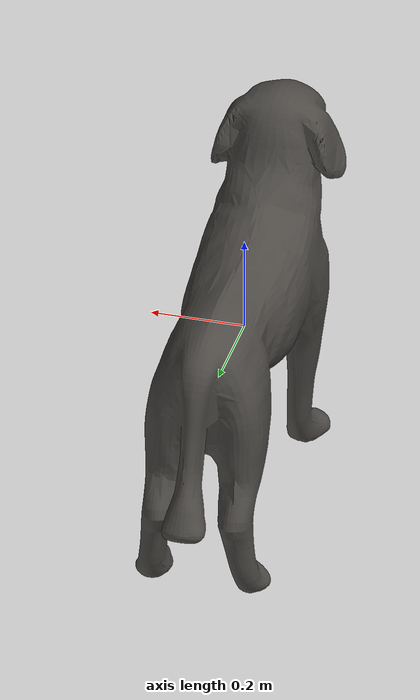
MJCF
<mujoco model="ImageToStl.com_uploads_files_5014764_Dog">
  <asset>
  <texture file="visual/ceramic.png" name="tex-ImageToStl.com_uploads_files_5014764_Dog" type="2d" />
  <material name="ImageToStl.com_uploads_files_5014764_Dog" reflectance="0.5" texrepeat="1 1" texture="tex-ImageToStl.com_uploads_files_5014764_Dog" texuniform="false" />
  <mesh file="visual/model_normalized_0.obj" name="model_normalized_0_vis" scale="1.0 1.0 1.0" /><texture type="2d" name="material_0" file="visual/Dog_Quad_Diffuse.png" /><material name="material_0" texture="material_0" specular="0.4" shininess="0.001" rgba="0.40000000 0.40000000 0.40000000 1.0" /><mesh file="collision/collision_piece_0.obj" name="collision_piece_0._coll" scale="1.0 1.0 1.0" /><mesh file="collision/collision_piece_1.obj" name="collision_piece_1._coll" scale="1.0 1.0 1.0" /><mesh file="collision/collision_piece_2.obj" name="collision_piece_2._coll" scale="1.0 1.0 1.0" /><mesh file="collision/collision_piece_3.obj" name="collision_piece_3._coll" scale="1.0 1.0 1.0" /><mesh file="collision/collision_piece_4.obj" name="collision_piece_4._coll" scale="1.0 1.0 1.0" /><mesh file="collision/collision_piece_5.obj" name="collision_piece_5._coll" scale="1.0 1.0 1.0" /><mesh file="collision/collision_piece_6.obj" name="collision_piece_6._coll" scale="1.0 1.0 1.0" /><mesh file="collision/collision_piece_7.obj" name="collision_piece_7._coll" scale="1.0 1.0 1.0" /><mesh file="collision/collision_piece_8.obj" name="collision_piece_8._coll" scale="1.0 1.0 1.0" /><mesh file="collision/collision_piece_9.obj" name="collision_piece_9._coll" scale="1.0 1.0 1.0" /><mesh file="collision/collision_piece_10.obj" name="collision_piece_10._coll" scale="1.0 1.0 1.0" /><mesh file="collision/collision_piece_11.obj" name="collision_piece_11._coll" scale="1.0 1.0 1.0" /><mesh file="collision/collision_piece_12.obj" name="collision_piece_12._coll" scale="1.0 1.0 1.0" /><mesh file="collision/collision_piece_13.obj" name="collision_piece_13._coll" scale="1.0 1.0 1.0" /><mesh file="collision/collision_piece_14.obj" name="collision_piece_14._coll" scale="1.0 1.0 1.0" /><mesh file="collision/collision_piece_15.obj" name="collision_piece_15._coll" scale="1.0 1.0 1.0" /><mesh file="collision/collision_piece_16.obj" name="collision_piece_16._coll" scale="1.0 1.0 1.0" /><mesh file="collision/collision_piece_17.obj" name="collision_piece_17._coll" scale="1.0 1.0 1.0" /><mesh file="collision/collision_piece_18.obj" name="collision_piece_18._coll" scale="1.0 1.0 1.0" /><mesh file="collision/collision_piece_19.obj" name="collision_piece_19._coll" scale="1.0 1.0 1.0" /><mesh file="collision/collision_piece_20.obj" name="collision_piece_20._coll" scale="1.0 1.0 1.0" /><mesh file="collision/collision_piece_21.obj" name="collision_piece_21._coll" scale="1.0 1.0 1.0" /><mesh file="collision/collision_piece_22.obj" name="collision_piece_22._coll" scale="1.0 1.0 1.0" /><mesh file="collision/collision_piece_23.obj" name="collision_piece_23._coll" scale="1.0 1.0 1.0" /><mesh file="collision/collision_piece_24.obj" name="collision_piece_24._coll" scale="1.0 1.0 1.0" /><mesh file="collision/collision_piece_25.obj" name="collision_piece_25._coll" scale="1.0 1.0 1.0" /><mesh file="collision/collision_piece_26.obj" name="collision_piece_26._coll" scale="1.0 1.0 1.0" /><mesh file="collision/collision_piece_27.obj" name="collision_piece_27._coll" scale="1.0 1.0 1.0" /><mesh file="collision/collision_piece_28.obj" name="collision_piece_28._coll" scale="1.0 1.0 1.0" /><mesh file="collision/collision_piece_29.obj" name="collision_piece_29._coll" scale="1.0 1.0 1.0" /><mesh file="collision/collision_piece_30.obj" name="collision_piece_30._coll" scale="1.0 1.0 1.0" /><mesh file="collision/collision_piece_31.obj" name="collision_piece_31._coll" scale="1.0 1.0 1.0" /><mesh file="collision/collision_piece_32.obj" name="collision_piece_32._coll" scale="1.0 1.0 1.0" /><mesh file="collision/collision_piece_33.obj" name="collision_piece_33._coll" scale="1.0 1.0 1.0" /><mesh file="collision/collision_piece_34.obj" name="collision_piece_34._coll" scale="1.0 1.0 1.0" /><mesh file="collision/collision_piece_35.obj" name="collision_piece_35._coll" scale="1.0 1.0 1.0" /><mesh file="collision/collision_piece_36.obj" name="collision_piece_36._coll" scale="1.0 1.0 1.0" /><mesh file="collision/collision_piece_37.obj" name="collision_piece_37._coll" scale="1.0 1.0 1.0" /><mesh file="collision/collision_piece_38.obj" name="collision_piece_38._coll" scale="1.0 1.0 1.0" /><mesh file="collision/collision_piece_39.obj" name="collision_piece_39._coll" scale="1.0 1.0 1.0" /><mesh file="collision/collision_piece_40.obj" name="collision_piece_40._coll" scale="1.0 1.0 1.0" /><mesh file="collision/collision_piece_41.obj" name="collision_piece_41._coll" scale="1.0 1.0 1.0" /><mesh file="collision/collision_piece_42.obj" name="collision_piece_42._coll" scale="1.0 1.0 1.0" /><mesh file="collision/collision_piece_43.obj" name="collision_piece_43._coll" scale="1.0 1.0 1.0" /><mesh file="collision/collision_piece_44.obj" name="collision_piece_44._coll" scale="1.0 1.0 1.0" /><mesh file="collision/collision_piece_45.obj" name="collision_piece_45._coll" scale="1.0 1.0 1.0" /><mesh file="collision/collision_piece_46.obj" name="collision_piece_46._coll" scale="1.0 1.0 1.0" /><mesh file="collision/collision_piece_47.obj" name="collision_piece_47._coll" scale="1.0 1.0 1.0" /><mesh file="collision/collision_piece_48.obj" name="collision_piece_48._coll" scale="1.0 1.0 1.0" /><mesh file="collision/collision_piece_49.obj" name="collision_piece_49._coll" scale="1.0 1.0 1.0" /><mesh file="collision/collision_piece_50.obj" name="collision_piece_50._coll" scale="1.0 1.0 1.0" /><mesh file="collision/collision_piece_51.obj" name="collision_piece_51._coll" scale="1.0 1.0 1.0" /><mesh file="collision/collision_piece_52.obj" name="collision_piece_52._coll" scale="1.0 1.0 1.0" /><mesh file="collision/collision_piece_53.obj" name="collision_piece_53._coll" scale="1.0 1.0 1.0" /><mesh file="collision/collision_piece_54.obj" name="collision_piece_54._coll" scale="1.0 1.0 1.0" /><mesh file="collision/collision_piece_55.obj" name="collision_piece_55._coll" scale="1.0 1.0 1.0" /><mesh file="collision/collision_piece_56.obj" name="collision_piece_56._coll" scale="1.0 1.0 1.0" /><mesh file="collision/collision_piece_57.obj" name="collision_piece_57._coll" scale="1.0 1.0 1.0" /><mesh file="collision/collision_piece_58.obj" name="collision_piece_58._coll" scale="1.0 1.0 1.0" /><mesh file="collision/collision_piece_59.obj" name="collision_piece_59._coll" scale="1.0 1.0 1.0" /><mesh file="collision/collision_piece_60.obj" name="collision_piece_60._coll" scale="1.0 1.0 1.0" /><mesh file="collision/collision_piece_61.obj" name="collision_piece_61._coll" scale="1.0 1.0 1.0" /><mesh file="collision/collision_piece_62.obj" name="collision_piece_62._coll" scale="1.0 1.0 1.0" /><mesh file="collision/collision_piece_63.obj" name="collision_piece_63._coll" scale="1.0 1.0 1.0" /><mesh file="collision/collision_piece_64.obj" name="collision_piece_64._coll" scale="1.0 1.0 1.0" /><mesh file="collision/collision_piece_65.obj" name="collision_piece_65._coll" scale="1.0 1.0 1.0" /><mesh file="collision/collision_piece_66.obj" name="collision_piece_66._coll" scale="1.0 1.0 1.0" /><mesh file="collision/collision_piece_67.obj" name="collision_piece_67._coll" scale="1.0 1.0 1.0" /><mesh file="collision/collision_piece_68.obj" name="collision_piece_68._coll" scale="1.0 1.0 1.0" /><mesh file="collision/collision_piece_69.obj" name="collision_piece_69._coll" scale="1.0 1.0 1.0" /><mesh file="collision/collision_piece_70.obj" name="collision_piece_70._coll" scale="1.0 1.0 1.0" /><mesh file="collision/collision_piece_71.obj" name="collision_piece_71._coll" scale="1.0 1.0 1.0" /><mesh file="collision/collision_piece_72.obj" name="collision_piece_72._coll" scale="1.0 1.0 1.0" /><mesh file="collision/collision_piece_73.obj" name="collision_piece_73._coll" scale="1.0 1.0 1.0" /><mesh file="collision/collision_piece_74.obj" name="collision_piece_74._coll" scale="1.0 1.0 1.0" /><mesh file="collision/collision_piece_75.obj" name="collision_piece_75._coll" scale="1.0 1.0 1.0" /><mesh file="collision/collision_piece_76.obj" name="collision_piece_76._coll" scale="1.0 1.0 1.0" /><mesh file="collision/collision_piece_77.obj" name="collision_piece_77._coll" scale="1.0 1.0 1.0" /><mesh file="collision/collision_piece_78.obj" name="collision_piece_78._coll" scale="1.0 1.0 1.0" /><mesh file="collision/collision_piece_79.obj" name="collision_piece_79._coll" scale="1.0 1.0 1.0" /><mesh file="collision/collision_piece_80.obj" name="collision_piece_80._coll" scale="1.0 1.0 1.0" /><mesh file="collision/collision_piece_81.obj" name="collision_piece_81._coll" scale="1.0 1.0 1.0" /><mesh file="collision/collision_piece_82.obj" name="collision_piece_82._coll" scale="1.0 1.0 1.0" /><mesh file="collision/collision_piece_83.obj" name="collision_piece_83._coll" scale="1.0 1.0 1.0" /><mesh file="collision/collision_piece_84.obj" name="collision_piece_84._coll" scale="1.0 1.0 1.0" /><mesh file="collision/collision_piece_85.obj" name="collision_piece_85._coll" scale="1.0 1.0 1.0" /><mesh file="collision/collision_piece_86.obj" name="collision_piece_86._coll" scale="1.0 1.0 1.0" /><mesh file="collision/collision_piece_87.obj" name="collision_piece_87._coll" scale="1.0 1.0 1.0" /><mesh file="collision/collision_piece_88.obj" name="collision_piece_88._coll" scale="1.0 1.0 1.0" /><mesh file="collision/collision_piece_89.obj" name="collision_piece_89._coll" scale="1.0 1.0 1.0" /><mesh file="collision/collision_piece_90.obj" name="collision_piece_90._coll" scale="1.0 1.0 1.0" /><mesh file="collision/collision_piece_91.obj" name="collision_piece_91._coll" scale="1.0 1.0 1.0" /><mesh file="collision/collision_piece_92.obj" name="collision_piece_92._coll" scale="1.0 1.0 1.0" /><mesh file="collision/collision_piece_93.obj" name="collision_piece_93._coll" scale="1.0 1.0 1.0" /><mesh file="collision/collision_piece_94.obj" name="collision_piece_94._coll" scale="1.0 1.0 1.0" /><mesh file="collision/collision_piece_95.obj" name="collision_piece_95._coll" scale="1.0 1.0 1.0" /><mesh file="collision/collision_piece_96.obj" name="collision_piece_96._coll" scale="1.0 1.0 1.0" /><mesh file="collision/collision_piece_97.obj" name="collision_piece_97._coll" scale="1.0 1.0 1.0" /><mesh file="collision/collision_piece_98.obj" name="collision_piece_98._coll" scale="1.0 1.0 1.0" /><mesh file="collision/collision_piece_99.obj" name="collision_piece_99._coll" scale="1.0 1.0 1.0" /><mesh file="collision/collision_piece_100.obj" name="collision_piece_100._coll" scale="1.0 1.0 1.0" /><mesh file="collision/collision_piece_101.obj" name="collision_piece_101._coll" scale="1.0 1.0 1.0" /><mesh file="collision/collision_piece_102.obj" name="collision_piece_102._coll" scale="1.0 1.0 1.0" /><mesh file="collision/collision_piece_103.obj" name="collision_piece_103._coll" scale="1.0 1.0 1.0" /><mesh file="collision/collision_piece_104.obj" name="collision_piece_104._coll" scale="1.0 1.0 1.0" /><mesh file="collision/collision_piece_105.obj" name="collision_piece_105._coll" scale="1.0 1.0 1.0" /><mesh file="collision/collision_piece_106.obj" name="collision_piece_106._coll" scale="1.0 1.0 1.0" /><mesh file="collision/collision_piece_107.obj" name="collision_piece_107._coll" scale="1.0 1.0 1.0" /><mesh file="collision/collision_piece_108.obj" name="collision_piece_108._coll" scale="1.0 1.0 1.0" /><mesh file="collision/collision_piece_109.obj" name="collision_piece_109._coll" scale="1.0 1.0 1.0" /><mesh file="collision/collision_piece_110.obj" name="collision_piece_110._coll" scale="1.0 1.0 1.0" /><mesh file="collision/collision_piece_111.obj" name="collision_piece_111._coll" scale="1.0 1.0 1.0" /><mesh file="collision/collision_piece_112.obj" name="collision_piece_112._coll" scale="1.0 1.0 1.0" /><mesh file="collision/collision_piece_113.obj" name="collision_piece_113._coll" scale="1.0 1.0 1.0" /><mesh file="collision/collision_piece_114.obj" name="collision_piece_114._coll" scale="1.0 1.0 1.0" /><mesh file="collision/collision_piece_115.obj" name="collision_piece_115._coll" scale="1.0 1.0 1.0" /><mesh file="collision/collision_piece_116.obj" name="collision_piece_116._coll" scale="1.0 1.0 1.0" /><mesh file="collision/collision_piece_117.obj" name="collision_piece_117._coll" scale="1.0 1.0 1.0" /><mesh file="collision/collision_piece_118.obj" name="collision_piece_118._coll" scale="1.0 1.0 1.0" /><mesh file="collision/collision_piece_119.obj" name="collision_piece_119._coll" scale="1.0 1.0 1.0" /><mesh file="collision/collision_piece_120.obj" name="collision_piece_120._coll" scale="1.0 1.0 1.0" /><mesh file="collision/collision_piece_121.obj" name="collision_piece_121._coll" scale="1.0 1.0 1.0" /><mesh file="collision/collision_piece_122.obj" name="collision_piece_122._coll" scale="1.0 1.0 1.0" /><mesh file="collision/collision_piece_123.obj" name="collision_piece_123._coll" scale="1.0 1.0 1.0" /><mesh file="collision/collision_piece_124.obj" name="collision_piece_124._coll" scale="1.0 1.0 1.0" /><mesh file="collision/collision_piece_125.obj" name="collision_piece_125._coll" scale="1.0 1.0 1.0" /><mesh file="collision/collision_piece_126.obj" name="collision_piece_126._coll" scale="1.0 1.0 1.0" /><mesh file="collision/collision_piece_127.obj" name="collision_piece_127._coll" scale="1.0 1.0 1.0" /></asset>
  <worldbody>
    <body>
      <body name="object">
      <geom solimp="0.998 0.998 0.001" solref="0.001 1" density="100" friction="0.95 0.3 0.1" type="mesh" mesh="model_normalized_0_vis" conaffinity="0" contype="0" group="1" material="material_0" /><geom solimp="0.998 0.998 0.001" solref="0.001 1" density="100" friction="0.95 0.3 0.1" type="mesh" mesh="collision_piece_0._coll" group="0" rgba="0.8 0.8 0.8 0.0" /><geom solimp="0.998 0.998 0.001" solref="0.001 1" density="100" friction="0.95 0.3 0.1" type="mesh" mesh="collision_piece_1._coll" group="0" rgba="0.8 0.8 0.8 0.0" /><geom solimp="0.998 0.998 0.001" solref="0.001 1" density="100" friction="0.95 0.3 0.1" type="mesh" mesh="collision_piece_2._coll" group="0" rgba="0.8 0.8 0.8 0.0" /><geom solimp="0.998 0.998 0.001" solref="0.001 1" density="100" friction="0.95 0.3 0.1" type="mesh" mesh="collision_piece_3._coll" group="0" rgba="0.8 0.8 0.8 0.0" /><geom solimp="0.998 0.998 0.001" solref="0.001 1" density="100" friction="0.95 0.3 0.1" type="mesh" mesh="collision_piece_4._coll" group="0" rgba="0.8 0.8 0.8 0.0" /><geom solimp="0.998 0.998 0.001" solref="0.001 1" density="100" friction="0.95 0.3 0.1" type="mesh" mesh="collision_piece_5._coll" group="0" rgba="0.8 0.8 0.8 0.0" /><geom solimp="0.998 0.998 0.001" solref="0.001 1" density="100" friction="0.95 0.3 0.1" type="mesh" mesh="collision_piece_6._coll" group="0" rgba="0.8 0.8 0.8 0.0" /><geom solimp="0.998 0.998 0.001" solref="0.001 1" density="100" friction="0.95 0.3 0.1" type="mesh" mesh="collision_piece_7._coll" group="0" rgba="0.8 0.8 0.8 0.0" /><geom solimp="0.998 0.998 0.001" solref="0.001 1" density="100" friction="0.95 0.3 0.1" type="mesh" mesh="collision_piece_8._coll" group="0" rgba="0.8 0.8 0.8 0.0" /><geom solimp="0.998 0.998 0.001" solref="0.001 1" density="100" friction="0.95 0.3 0.1" type="mesh" mesh="collision_piece_9._coll" group="0" rgba="0.8 0.8 0.8 0.0" /><geom solimp="0.998 0.998 0.001" solref="0.001 1" density="100" friction="0.95 0.3 0.1" type="mesh" mesh="collision_piece_10._coll" group="0" rgba="0.8 0.8 0.8 0.0" /><geom solimp="0.998 0.998 0.001" solref="0.001 1" density="100" friction="0.95 0.3 0.1" type="mesh" mesh="collision_piece_11._coll" group="0" rgba="0.8 0.8 0.8 0.0" /><geom solimp="0.998 0.998 0.001" solref="0.001 1" density="100" friction="0.95 0.3 0.1" type="mesh" mesh="collision_piece_12._coll" group="0" rgba="0.8 0.8 0.8 0.0" /><geom solimp="0.998 0.998 0.001" solref="0.001 1" density="100" friction="0.95 0.3 0.1" type="mesh" mesh="collision_piece_13._coll" group="0" rgba="0.8 0.8 0.8 0.0" /><geom solimp="0.998 0.998 0.001" solref="0.001 1" density="100" friction="0.95 0.3 0.1" type="mesh" mesh="collision_piece_14._coll" group="0" rgba="0.8 0.8 0.8 0.0" /><geom solimp="0.998 0.998 0.001" solref="0.001 1" density="100" friction="0.95 0.3 0.1" type="mesh" mesh="collision_piece_15._coll" group="0" rgba="0.8 0.8 0.8 0.0" /><geom solimp="0.998 0.998 0.001" solref="0.001 1" density="100" friction="0.95 0.3 0.1" type="mesh" mesh="collision_piece_16._coll" group="0" rgba="0.8 0.8 0.8 0.0" /><geom solimp="0.998 0.998 0.001" solref="0.001 1" density="100" friction="0.95 0.3 0.1" type="mesh" mesh="collision_piece_17._coll" group="0" rgba="0.8 0.8 0.8 0.0" /><geom solimp="0.998 0.998 0.001" solref="0.001 1" density="100" friction="0.95 0.3 0.1" type="mesh" mesh="collision_piece_18._coll" group="0" rgba="0.8 0.8 0.8 0.0" /><geom solimp="0.998 0.998 0.001" solref="0.001 1" density="100" friction="0.95 0.3 0.1" type="mesh" mesh="collision_piece_19._coll" group="0" rgba="0.8 0.8 0.8 0.0" /><geom solimp="0.998 0.998 0.001" solref="0.001 1" density="100" friction="0.95 0.3 0.1" type="mesh" mesh="collision_piece_20._coll" group="0" rgba="0.8 0.8 0.8 0.0" /><geom solimp="0.998 0.998 0.001" solref="0.001 1" density="100" friction="0.95 0.3 0.1" type="mesh" mesh="collision_piece_21._coll" group="0" rgba="0.8 0.8 0.8 0.0" /><geom solimp="0.998 0.998 0.001" solref="0.001 1" density="100" friction="0.95 0.3 0.1" type="mesh" mesh="collision_piece_22._coll" group="0" rgba="0.8 0.8 0.8 0.0" /><geom solimp="0.998 0.998 0.001" solref="0.001 1" density="100" friction="0.95 0.3 0.1" type="mesh" mesh="collision_piece_23._coll" group="0" rgba="0.8 0.8 0.8 0.0" /><geom solimp="0.998 0.998 0.001" solref="0.001 1" density="100" friction="0.95 0.3 0.1" type="mesh" mesh="collision_piece_24._coll" group="0" rgba="0.8 0.8 0.8 0.0" /><geom solimp="0.998 0.998 0.001" solref="0.001 1" density="100" friction="0.95 0.3 0.1" type="mesh" mesh="collision_piece_25._coll" group="0" rgba="0.8 0.8 0.8 0.0" /><geom solimp="0.998 0.998 0.001" solref="0.001 1" density="100" friction="0.95 0.3 0.1" type="mesh" mesh="collision_piece_26._coll" group="0" rgba="0.8 0.8 0.8 0.0" /><geom solimp="0.998 0.998 0.001" solref="0.001 1" density="100" friction="0.95 0.3 0.1" type="mesh" mesh="collision_piece_27._coll" group="0" rgba="0.8 0.8 0.8 0.0" /><geom solimp="0.998 0.998 0.001" solref="0.001 1" density="100" friction="0.95 0.3 0.1" type="mesh" mesh="collision_piece_28._coll" group="0" rgba="0.8 0.8 0.8 0.0" /><geom solimp="0.998 0.998 0.001" solref="0.001 1" density="100" friction="0.95 0.3 0.1" type="mesh" mesh="collision_piece_29._coll" group="0" rgba="0.8 0.8 0.8 0.0" /><geom solimp="0.998 0.998 0.001" solref="0.001 1" density="100" friction="0.95 0.3 0.1" type="mesh" mesh="collision_piece_30._coll" group="0" rgba="0.8 0.8 0.8 0.0" /><geom solimp="0.998 0.998 0.001" solref="0.001 1" density="100" friction="0.95 0.3 0.1" type="mesh" mesh="collision_piece_31._coll" group="0" rgba="0.8 0.8 0.8 0.0" /><geom solimp="0.998 0.998 0.001" solref="0.001 1" density="100" friction="0.95 0.3 0.1" type="mesh" mesh="collision_piece_32._coll" group="0" rgba="0.8 0.8 0.8 0.0" /><geom solimp="0.998 0.998 0.001" solref="0.001 1" density="100" friction="0.95 0.3 0.1" type="mesh" mesh="collision_piece_33._coll" group="0" rgba="0.8 0.8 0.8 0.0" /><geom solimp="0.998 0.998 0.001" solref="0.001 1" density="100" friction="0.95 0.3 0.1" type="mesh" mesh="collision_piece_34._coll" group="0" rgba="0.8 0.8 0.8 0.0" /><geom solimp="0.998 0.998 0.001" solref="0.001 1" density="100" friction="0.95 0.3 0.1" type="mesh" mesh="collision_piece_35._coll" group="0" rgba="0.8 0.8 0.8 0.0" /><geom solimp="0.998 0.998 0.001" solref="0.001 1" density="100" friction="0.95 0.3 0.1" type="mesh" mesh="collision_piece_36._coll" group="0" rgba="0.8 0.8 0.8 0.0" /><geom solimp="0.998 0.998 0.001" solref="0.001 1" density="100" friction="0.95 0.3 0.1" type="mesh" mesh="collision_piece_37._coll" group="0" rgba="0.8 0.8 0.8 0.0" /><geom solimp="0.998 0.998 0.001" solref="0.001 1" density="100" friction="0.95 0.3 0.1" type="mesh" mesh="collision_piece_38._coll" group="0" rgba="0.8 0.8 0.8 0.0" /><geom solimp="0.998 0.998 0.001" solref="0.001 1" density="100" friction="0.95 0.3 0.1" type="mesh" mesh="collision_piece_39._coll" group="0" rgba="0.8 0.8 0.8 0.0" /><geom solimp="0.998 0.998 0.001" solref="0.001 1" density="100" friction="0.95 0.3 0.1" type="mesh" mesh="collision_piece_40._coll" group="0" rgba="0.8 0.8 0.8 0.0" /><geom solimp="0.998 0.998 0.001" solref="0.001 1" density="100" friction="0.95 0.3 0.1" type="mesh" mesh="collision_piece_41._coll" group="0" rgba="0.8 0.8 0.8 0.0" /><geom solimp="0.998 0.998 0.001" solref="0.001 1" density="100" friction="0.95 0.3 0.1" type="mesh" mesh="collision_piece_42._coll" group="0" rgba="0.8 0.8 0.8 0.0" /><geom solimp="0.998 0.998 0.001" solref="0.001 1" density="100" friction="0.95 0.3 0.1" type="mesh" mesh="collision_piece_43._coll" group="0" rgba="0.8 0.8 0.8 0.0" /><geom solimp="0.998 0.998 0.001" solref="0.001 1" density="100" friction="0.95 0.3 0.1" type="mesh" mesh="collision_piece_44._coll" group="0" rgba="0.8 0.8 0.8 0.0" /><geom solimp="0.998 0.998 0.001" solref="0.001 1" density="100" friction="0.95 0.3 0.1" type="mesh" mesh="collision_piece_45._coll" group="0" rgba="0.8 0.8 0.8 0.0" /><geom solimp="0.998 0.998 0.001" solref="0.001 1" density="100" friction="0.95 0.3 0.1" type="mesh" mesh="collision_piece_46._coll" group="0" rgba="0.8 0.8 0.8 0.0" /><geom solimp="0.998 0.998 0.001" solref="0.001 1" density="100" friction="0.95 0.3 0.1" type="mesh" mesh="collision_piece_47._coll" group="0" rgba="0.8 0.8 0.8 0.0" /><geom solimp="0.998 0.998 0.001" solref="0.001 1" density="100" friction="0.95 0.3 0.1" type="mesh" mesh="collision_piece_48._coll" group="0" rgba="0.8 0.8 0.8 0.0" /><geom solimp="0.998 0.998 0.001" solref="0.001 1" density="100" friction="0.95 0.3 0.1" type="mesh" mesh="collision_piece_49._coll" group="0" rgba="0.8 0.8 0.8 0.0" /><geom solimp="0.998 0.998 0.001" solref="0.001 1" density="100" friction="0.95 0.3 0.1" type="mesh" mesh="collision_piece_50._coll" group="0" rgba="0.8 0.8 0.8 0.0" /><geom solimp="0.998 0.998 0.001" solref="0.001 1" density="100" friction="0.95 0.3 0.1" type="mesh" mesh="collision_piece_51._coll" group="0" rgba="0.8 0.8 0.8 0.0" /><geom solimp="0.998 0.998 0.001" solref="0.001 1" density="100" friction="0.95 0.3 0.1" type="mesh" mesh="collision_piece_52._coll" group="0" rgba="0.8 0.8 0.8 0.0" /><geom solimp="0.998 0.998 0.001" solref="0.001 1" density="100" friction="0.95 0.3 0.1" type="mesh" mesh="collision_piece_53._coll" group="0" rgba="0.8 0.8 0.8 0.0" /><geom solimp="0.998 0.998 0.001" solref="0.001 1" density="100" friction="0.95 0.3 0.1" type="mesh" mesh="collision_piece_54._coll" group="0" rgba="0.8 0.8 0.8 0.0" /><geom solimp="0.998 0.998 0.001" solref="0.001 1" density="100" friction="0.95 0.3 0.1" type="mesh" mesh="collision_piece_55._coll" group="0" rgba="0.8 0.8 0.8 0.0" /><geom solimp="0.998 0.998 0.001" solref="0.001 1" density="100" friction="0.95 0.3 0.1" type="mesh" mesh="collision_piece_56._coll" group="0" rgba="0.8 0.8 0.8 0.0" /><geom solimp="0.998 0.998 0.001" solref="0.001 1" density="100" friction="0.95 0.3 0.1" type="mesh" mesh="collision_piece_57._coll" group="0" rgba="0.8 0.8 0.8 0.0" /><geom solimp="0.998 0.998 0.001" solref="0.001 1" density="100" friction="0.95 0.3 0.1" type="mesh" mesh="collision_piece_58._coll" group="0" rgba="0.8 0.8 0.8 0.0" /><geom solimp="0.998 0.998 0.001" solref="0.001 1" density="100" friction="0.95 0.3 0.1" type="mesh" mesh="collision_piece_59._coll" group="0" rgba="0.8 0.8 0.8 0.0" /><geom solimp="0.998 0.998 0.001" solref="0.001 1" density="100" friction="0.95 0.3 0.1" type="mesh" mesh="collision_piece_60._coll" group="0" rgba="0.8 0.8 0.8 0.0" /><geom solimp="0.998 0.998 0.001" solref="0.001 1" density="100" friction="0.95 0.3 0.1" type="mesh" mesh="collision_piece_61._coll" group="0" rgba="0.8 0.8 0.8 0.0" /><geom solimp="0.998 0.998 0.001" solref="0.001 1" density="100" friction="0.95 0.3 0.1" type="mesh" mesh="collision_piece_62._coll" group="0" rgba="0.8 0.8 0.8 0.0" /><geom solimp="0.998 0.998 0.001" solref="0.001 1" density="100" friction="0.95 0.3 0.1" type="mesh" mesh="collision_piece_63._coll" group="0" rgba="0.8 0.8 0.8 0.0" /><geom solimp="0.998 0.998 0.001" solref="0.001 1" density="100" friction="0.95 0.3 0.1" type="mesh" mesh="collision_piece_64._coll" group="0" rgba="0.8 0.8 0.8 0.0" /><geom solimp="0.998 0.998 0.001" solref="0.001 1" density="100" friction="0.95 0.3 0.1" type="mesh" mesh="collision_piece_65._coll" group="0" rgba="0.8 0.8 0.8 0.0" /><geom solimp="0.998 0.998 0.001" solref="0.001 1" density="100" friction="0.95 0.3 0.1" type="mesh" mesh="collision_piece_66._coll" group="0" rgba="0.8 0.8 0.8 0.0" /><geom solimp="0.998 0.998 0.001" solref="0.001 1" density="100" friction="0.95 0.3 0.1" type="mesh" mesh="collision_piece_67._coll" group="0" rgba="0.8 0.8 0.8 0.0" /><geom solimp="0.998 0.998 0.001" solref="0.001 1" density="100" friction="0.95 0.3 0.1" type="mesh" mesh="collision_piece_68._coll" group="0" rgba="0.8 0.8 0.8 0.0" /><geom solimp="0.998 0.998 0.001" solref="0.001 1" density="100" friction="0.95 0.3 0.1" type="mesh" mesh="collision_piece_69._coll" group="0" rgba="0.8 0.8 0.8 0.0" /><geom solimp="0.998 0.998 0.001" solref="0.001 1" density="100" friction="0.95 0.3 0.1" type="mesh" mesh="collision_piece_70._coll" group="0" rgba="0.8 0.8 0.8 0.0" /><geom solimp="0.998 0.998 0.001" solref="0.001 1" density="100" friction="0.95 0.3 0.1" type="mesh" mesh="collision_piece_71._coll" group="0" rgba="0.8 0.8 0.8 0.0" /><geom solimp="0.998 0.998 0.001" solref="0.001 1" density="100" friction="0.95 0.3 0.1" type="mesh" mesh="collision_piece_72._coll" group="0" rgba="0.8 0.8 0.8 0.0" /><geom solimp="0.998 0.998 0.001" solref="0.001 1" density="100" friction="0.95 0.3 0.1" type="mesh" mesh="collision_piece_73._coll" group="0" rgba="0.8 0.8 0.8 0.0" /><geom solimp="0.998 0.998 0.001" solref="0.001 1" density="100" friction="0.95 0.3 0.1" type="mesh" mesh="collision_piece_74._coll" group="0" rgba="0.8 0.8 0.8 0.0" /><geom solimp="0.998 0.998 0.001" solref="0.001 1" density="100" friction="0.95 0.3 0.1" type="mesh" mesh="collision_piece_75._coll" group="0" rgba="0.8 0.8 0.8 0.0" /><geom solimp="0.998 0.998 0.001" solref="0.001 1" density="100" friction="0.95 0.3 0.1" type="mesh" mesh="collision_piece_76._coll" group="0" rgba="0.8 0.8 0.8 0.0" /><geom solimp="0.998 0.998 0.001" solref="0.001 1" density="100" friction="0.95 0.3 0.1" type="mesh" mesh="collision_piece_77._coll" group="0" rgba="0.8 0.8 0.8 0.0" /><geom solimp="0.998 0.998 0.001" solref="0.001 1" density="100" friction="0.95 0.3 0.1" type="mesh" mesh="collision_piece_78._coll" group="0" rgba="0.8 0.8 0.8 0.0" /><geom solimp="0.998 0.998 0.001" solref="0.001 1" density="100" friction="0.95 0.3 0.1" type="mesh" mesh="collision_piece_79._coll" group="0" rgba="0.8 0.8 0.8 0.0" /><geom solimp="0.998 0.998 0.001" solref="0.001 1" density="100" friction="0.95 0.3 0.1" type="mesh" mesh="collision_piece_80._coll" group="0" rgba="0.8 0.8 0.8 0.0" /><geom solimp="0.998 0.998 0.001" solref="0.001 1" density="100" friction="0.95 0.3 0.1" type="mesh" mesh="collision_piece_81._coll" group="0" rgba="0.8 0.8 0.8 0.0" /><geom solimp="0.998 0.998 0.001" solref="0.001 1" density="100" friction="0.95 0.3 0.1" type="mesh" mesh="collision_piece_82._coll" group="0" rgba="0.8 0.8 0.8 0.0" /><geom solimp="0.998 0.998 0.001" solref="0.001 1" density="100" friction="0.95 0.3 0.1" type="mesh" mesh="collision_piece_83._coll" group="0" rgba="0.8 0.8 0.8 0.0" /><geom solimp="0.998 0.998 0.001" solref="0.001 1" density="100" friction="0.95 0.3 0.1" type="mesh" mesh="collision_piece_84._coll" group="0" rgba="0.8 0.8 0.8 0.0" /><geom solimp="0.998 0.998 0.001" solref="0.001 1" density="100" friction="0.95 0.3 0.1" type="mesh" mesh="collision_piece_85._coll" group="0" rgba="0.8 0.8 0.8 0.0" /><geom solimp="0.998 0.998 0.001" solref="0.001 1" density="100" friction="0.95 0.3 0.1" type="mesh" mesh="collision_piece_86._coll" group="0" rgba="0.8 0.8 0.8 0.0" /><geom solimp="0.998 0.998 0.001" solref="0.001 1" density="100" friction="0.95 0.3 0.1" type="mesh" mesh="collision_piece_87._coll" group="0" rgba="0.8 0.8 0.8 0.0" /><geom solimp="0.998 0.998 0.001" solref="0.001 1" density="100" friction="0.95 0.3 0.1" type="mesh" mesh="collision_piece_88._coll" group="0" rgba="0.8 0.8 0.8 0.0" /><geom solimp="0.998 0.998 0.001" solref="0.001 1" density="100" friction="0.95 0.3 0.1" type="mesh" mesh="collision_piece_89._coll" group="0" rgba="0.8 0.8 0.8 0.0" /><geom solimp="0.998 0.998 0.001" solref="0.001 1" density="100" friction="0.95 0.3 0.1" type="mesh" mesh="collision_piece_90._coll" group="0" rgba="0.8 0.8 0.8 0.0" /><geom solimp="0.998 0.998 0.001" solref="0.001 1" density="100" friction="0.95 0.3 0.1" type="mesh" mesh="collision_piece_91._coll" group="0" rgba="0.8 0.8 0.8 0.0" /><geom solimp="0.998 0.998 0.001" solref="0.001 1" density="100" friction="0.95 0.3 0.1" type="mesh" mesh="collision_piece_92._coll" group="0" rgba="0.8 0.8 0.8 0.0" /><geom solimp="0.998 0.998 0.001" solref="0.001 1" density="100" friction="0.95 0.3 0.1" type="mesh" mesh="collision_piece_93._coll" group="0" rgba="0.8 0.8 0.8 0.0" /><geom solimp="0.998 0.998 0.001" solref="0.001 1" density="100" friction="0.95 0.3 0.1" type="mesh" mesh="collision_piece_94._coll" group="0" rgba="0.8 0.8 0.8 0.0" /><geom solimp="0.998 0.998 0.001" solref="0.001 1" density="100" friction="0.95 0.3 0.1" type="mesh" mesh="collision_piece_95._coll" group="0" rgba="0.8 0.8 0.8 0.0" /><geom solimp="0.998 0.998 0.001" solref="0.001 1" density="100" friction="0.95 0.3 0.1" type="mesh" mesh="collision_piece_96._coll" group="0" rgba="0.8 0.8 0.8 0.0" /><geom solimp="0.998 0.998 0.001" solref="0.001 1" density="100" friction="0.95 0.3 0.1" type="mesh" mesh="collision_piece_97._coll" group="0" rgba="0.8 0.8 0.8 0.0" /><geom solimp="0.998 0.998 0.001" solref="0.001 1" density="100" friction="0.95 0.3 0.1" type="mesh" mesh="collision_piece_98._coll" group="0" rgba="0.8 0.8 0.8 0.0" /><geom solimp="0.998 0.998 0.001" solref="0.001 1" density="100" friction="0.95 0.3 0.1" type="mesh" mesh="collision_piece_99._coll" group="0" rgba="0.8 0.8 0.8 0.0" /><geom solimp="0.998 0.998 0.001" solref="0.001 1" density="100" friction="0.95 0.3 0.1" type="mesh" mesh="collision_piece_100._coll" group="0" rgba="0.8 0.8 0.8 0.0" /><geom solimp="0.998 0.998 0.001" solref="0.001 1" density="100" friction="0.95 0.3 0.1" type="mesh" mesh="collision_piece_101._coll" group="0" rgba="0.8 0.8 0.8 0.0" /><geom solimp="0.998 0.998 0.001" solref="0.001 1" density="100" friction="0.95 0.3 0.1" type="mesh" mesh="collision_piece_102._coll" group="0" rgba="0.8 0.8 0.8 0.0" /><geom solimp="0.998 0.998 0.001" solref="0.001 1" density="100" friction="0.95 0.3 0.1" type="mesh" mesh="collision_piece_103._coll" group="0" rgba="0.8 0.8 0.8 0.0" /><geom solimp="0.998 0.998 0.001" solref="0.001 1" density="100" friction="0.95 0.3 0.1" type="mesh" mesh="collision_piece_104._coll" group="0" rgba="0.8 0.8 0.8 0.0" /><geom solimp="0.998 0.998 0.001" solref="0.001 1" density="100" friction="0.95 0.3 0.1" type="mesh" mesh="collision_piece_105._coll" group="0" rgba="0.8 0.8 0.8 0.0" /><geom solimp="0.998 0.998 0.001" solref="0.001 1" density="100" friction="0.95 0.3 0.1" type="mesh" mesh="collision_piece_106._coll" group="0" rgba="0.8 0.8 0.8 0.0" /><geom solimp="0.998 0.998 0.001" solref="0.001 1" density="100" friction="0.95 0.3 0.1" type="mesh" mesh="collision_piece_107._coll" group="0" rgba="0.8 0.8 0.8 0.0" /><geom solimp="0.998 0.998 0.001" solref="0.001 1" density="100" friction="0.95 0.3 0.1" type="mesh" mesh="collision_piece_108._coll" group="0" rgba="0.8 0.8 0.8 0.0" /><geom solimp="0.998 0.998 0.001" solref="0.001 1" density="100" friction="0.95 0.3 0.1" type="mesh" mesh="collision_piece_109._coll" group="0" rgba="0.8 0.8 0.8 0.0" /><geom solimp="0.998 0.998 0.001" solref="0.001 1" density="100" friction="0.95 0.3 0.1" type="mesh" mesh="collision_piece_110._coll" group="0" rgba="0.8 0.8 0.8 0.0" /><geom solimp="0.998 0.998 0.001" solref="0.001 1" density="100" friction="0.95 0.3 0.1" type="mesh" mesh="collision_piece_111._coll" group="0" rgba="0.8 0.8 0.8 0.0" /><geom solimp="0.998 0.998 0.001" solref="0.001 1" density="100" friction="0.95 0.3 0.1" type="mesh" mesh="collision_piece_112._coll" group="0" rgba="0.8 0.8 0.8 0.0" /><geom solimp="0.998 0.998 0.001" solref="0.001 1" density="100" friction="0.95 0.3 0.1" type="mesh" mesh="collision_piece_113._coll" group="0" rgba="0.8 0.8 0.8 0.0" /><geom solimp="0.998 0.998 0.001" solref="0.001 1" density="100" friction="0.95 0.3 0.1" type="mesh" mesh="collision_piece_114._coll" group="0" rgba="0.8 0.8 0.8 0.0" /><geom solimp="0.998 0.998 0.001" solref="0.001 1" density="100" friction="0.95 0.3 0.1" type="mesh" mesh="collision_piece_115._coll" group="0" rgba="0.8 0.8 0.8 0.0" /><geom solimp="0.998 0.998 0.001" solref="0.001 1" density="100" friction="0.95 0.3 0.1" type="mesh" mesh="collision_piece_116._coll" group="0" rgba="0.8 0.8 0.8 0.0" /><geom solimp="0.998 0.998 0.001" solref="0.001 1" density="100" friction="0.95 0.3 0.1" type="mesh" mesh="collision_piece_117._coll" group="0" rgba="0.8 0.8 0.8 0.0" /><geom solimp="0.998 0.998 0.001" solref="0.001 1" density="100" friction="0.95 0.3 0.1" type="mesh" mesh="collision_piece_118._coll" group="0" rgba="0.8 0.8 0.8 0.0" /><geom solimp="0.998 0.998 0.001" solref="0.001 1" density="100" friction="0.95 0.3 0.1" type="mesh" mesh="collision_piece_119._coll" group="0" rgba="0.8 0.8 0.8 0.0" /><geom solimp="0.998 0.998 0.001" solref="0.001 1" density="100" friction="0.95 0.3 0.1" type="mesh" mesh="collision_piece_120._coll" group="0" rgba="0.8 0.8 0.8 0.0" /><geom solimp="0.998 0.998 0.001" solref="0.001 1" density="100" friction="0.95 0.3 0.1" type="mesh" mesh="collision_piece_121._coll" group="0" rgba="0.8 0.8 0.8 0.0" /><geom solimp="0.998 0.998 0.001" solref="0.001 1" density="100" friction="0.95 0.3 0.1" type="mesh" mesh="collision_piece_122._coll" group="0" rgba="0.8 0.8 0.8 0.0" /><geom solimp="0.998 0.998 0.001" solref="0.001 1" density="100" friction="0.95 0.3 0.1" type="mesh" mesh="collision_piece_123._coll" group="0" rgba="0.8 0.8 0.8 0.0" /><geom solimp="0.998 0.998 0.001" solref="0.001 1" density="100" friction="0.95 0.3 0.1" type="mesh" mesh="collision_piece_124._coll" group="0" rgba="0.8 0.8 0.8 0.0" /><geom solimp="0.998 0.998 0.001" solref="0.001 1" density="100" friction="0.95 0.3 0.1" type="mesh" mesh="collision_piece_125._coll" group="0" rgba="0.8 0.8 0.8 0.0" /><geom solimp="0.998 0.998 0.001" solref="0.001 1" density="100" friction="0.95 0.3 0.1" type="mesh" mesh="collision_piece_126._coll" group="0" rgba="0.8 0.8 0.8 0.0" /><geom solimp="0.998 0.998 0.001" solref="0.001 1" density="100" friction="0.95 0.3 0.1" type="mesh" mesh="collision_piece_127._coll" group="0" rgba="0.8 0.8 0.8 0.0" /></body>
      <site rgba="0 0 0 0" size="0.005" pos="0.0012759189457353937 7.6013928484997e-10 -0.41867158735258897" name="bottom_site" />
      <site rgba="0 0 0 0" size="0.005" pos="0.0012759189457353937 7.6013928484997e-10 0.4146617467408837" name="top_site" />
      <site rgba="0 0 0 0" size="0.005" pos="0.15279107046088689 0.5075757583358969 -0.002004920305852642" name="horizontal_radius_site" />
    </body>
  </worldbody>
</mujoco>
